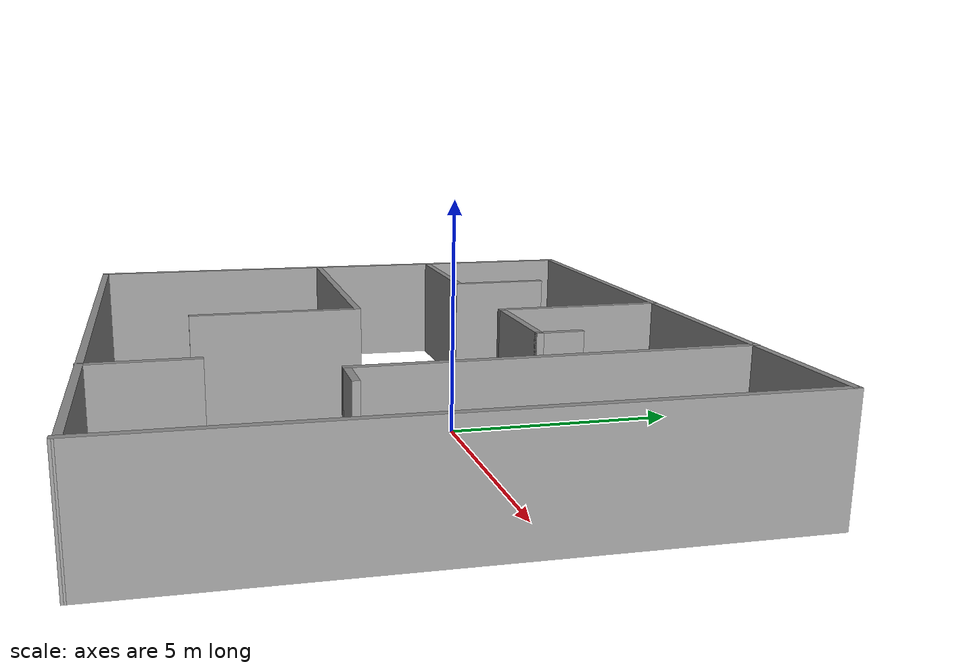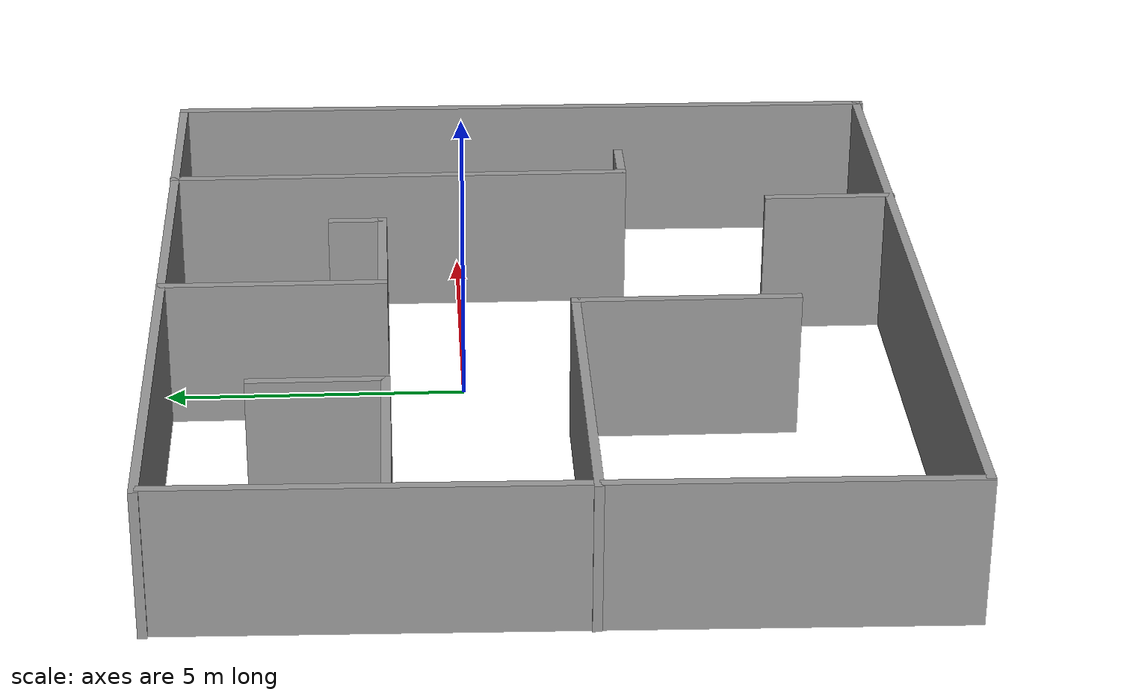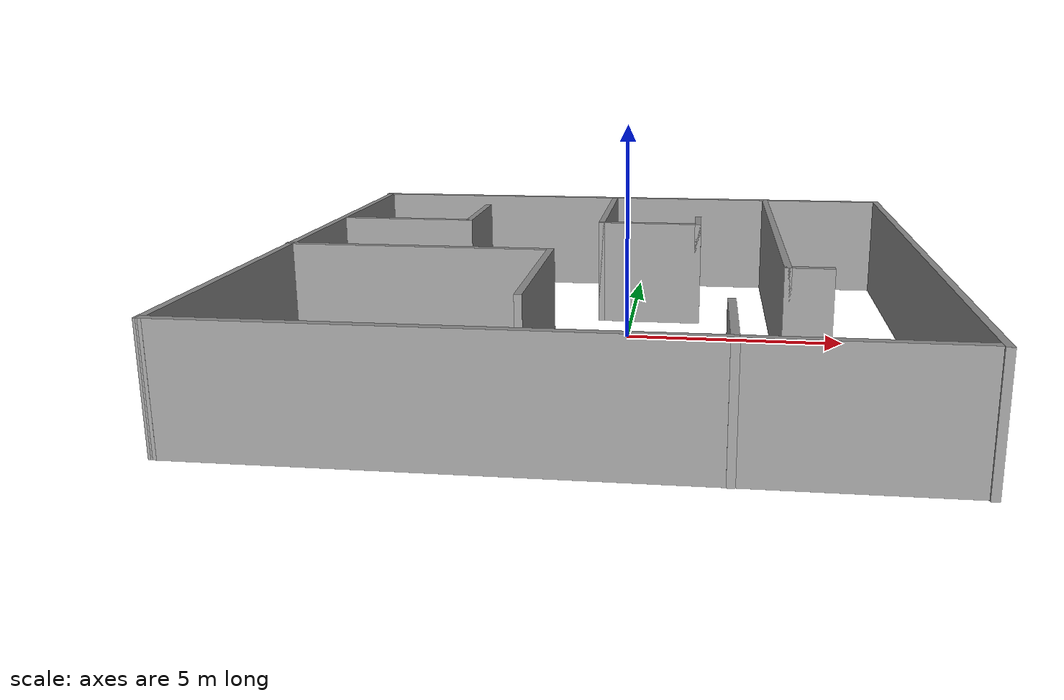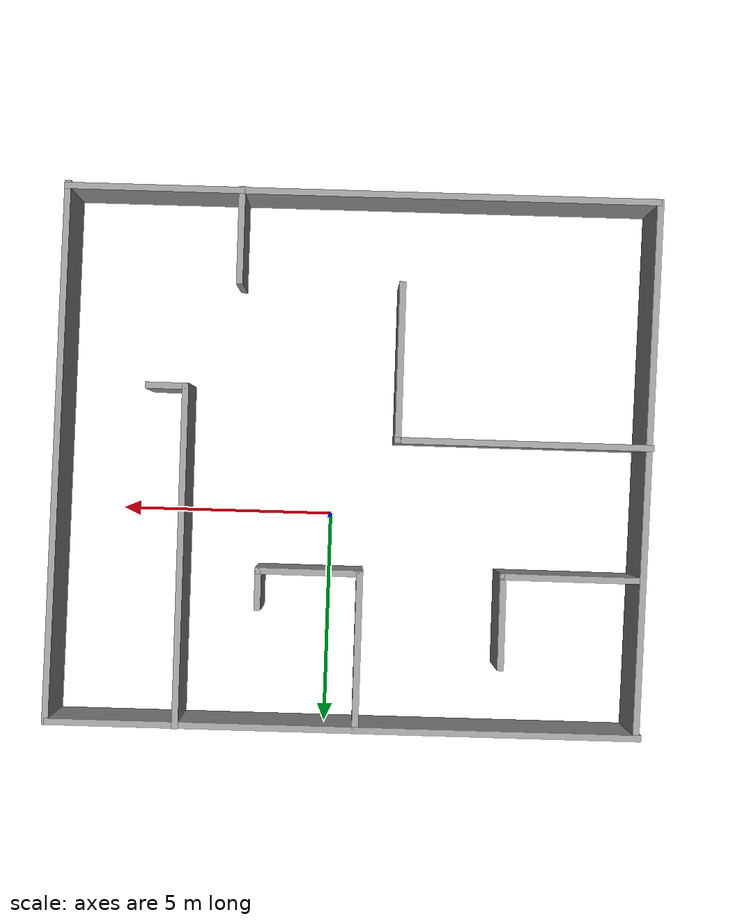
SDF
<?xml version='1.0'?>
<sdf version='1.7'>
  <model name='A1_WORLD'>
    <pose>-0.494931 -1.2592 0 0 -0 0</pose>
    <link name='Wall_11'>
      <collision name='Wall_11_Collision'>
        <geometry>
          <box>
            <size>13.8197 0.15 2.5</size>
          </box>
        </geometry>
        <pose>0 0 1.25 0 -0 0</pose>
      </collision>
      <visual name='Wall_11_Visual'>
        <pose>0 0 1.25 0 -0 0</pose>
        <geometry>
          <box>
            <size>13.8197 0.15 2.5</size>
          </box>
        </geometry>
        <material>
          <script>
            <uri>file://media/materials/scripts/gazebo.material</uri>
            <name>Gazebo/Grey</name>
          </script>
          <ambient>1 1 1 1</ambient>
        </material>
        <meta>
          <layer>0</layer>
        </meta>
      </visual>
      <pose>-0.046384 -6.19867 0 0 -0 0.00296</pose>
    </link>
    <link name='Wall_13'>
      <collision name='Wall_13_Collision'>
        <geometry>
          <box>
            <size>3.25 0.15 2.5</size>
          </box>
        </geometry>
        <pose>0 0 1.25 0 -0 0</pose>
      </collision>
      <visual name='Wall_13_Visual'>
        <pose>0 0 1.25 0 -0 0</pose>
        <geometry>
          <box>
            <size>3.25 0.15 2.5</size>
          </box>
        </geometry>
        <material>
          <script>
            <uri>file://media/materials/scripts/gazebo.material</uri>
            <name>Gazebo/Grey</name>
          </script>
          <ambient>1 1 1 1</ambient>
        </material>
        <meta>
          <layer>0</layer>
        </meta>
      </visual>
      <pose>-5.11064 2.54435 0 0 -0 3.14159</pose>
    </link>
    <link name='Wall_15'>
      <collision name='Wall_15_Collision'>
        <geometry>
          <box>
            <size>2.25 0.15 2.5</size>
          </box>
        </geometry>
        <pose>0 0 1.25 0 -0 0</pose>
      </collision>
      <visual name='Wall_15_Visual'>
        <pose>0 0 1.25 0 -0 0</pose>
        <geometry>
          <box>
            <size>2.25 0.15 2.5</size>
          </box>
        </geometry>
        <material>
          <script>
            <uri>file://media/materials/scripts/gazebo.material</uri>
            <name>Gazebo/Grey</name>
          </script>
          <ambient>1 1 1 1</ambient>
        </material>
        <meta>
          <layer>0</layer>
        </meta>
      </visual>
      <pose>-3.56064 3.59435 0 0 -0 1.5708</pose>
    </link>
    <link name='Wall_17'>
      <collision name='Wall_17_Collision'>
        <geometry>
          <box>
            <size>6 0.15 2.5</size>
          </box>
        </geometry>
        <pose>0 0 1.25 0 -0 0</pose>
      </collision>
      <visual name='Wall_17_Visual'>
        <pose>0 0 1.25 0 -0 0</pose>
        <geometry>
          <box>
            <size>6 0.15 2.5</size>
          </box>
        </geometry>
        <material>
          <script>
            <uri>file://media/materials/scripts/gazebo.material</uri>
            <name>Gazebo/Grey</name>
          </script>
          <ambient>1 1 1 1</ambient>
        </material>
        <meta>
          <layer>0</layer>
        </meta>
      </visual>
      <pose>-3.953 -0.530276 0 0 -0 0</pose>
    </link>
    <link name='Wall_18'>
      <collision name='Wall_18_Collision'>
        <geometry>
          <box>
            <size>3.75 0.15 2.5</size>
          </box>
        </geometry>
        <pose>0 0 1.25 0 -0 0</pose>
      </collision>
      <visual name='Wall_18_Visual'>
        <pose>0 0 1.25 0 -0 0</pose>
        <geometry>
          <box>
            <size>3.75 0.15 2.5</size>
          </box>
        </geometry>
        <material>
          <script>
            <uri>file://media/materials/scripts/gazebo.material</uri>
            <name>Gazebo/Grey</name>
          </script>
          <ambient>1 1 1 1</ambient>
        </material>
        <meta>
          <layer>0</layer>
        </meta>
      </visual>
      <pose>-1.028 -2.33028 0 0 -0 -1.5708</pose>
    </link>
    <link name='Wall_20'>
      <collision name='Wall_20_Collision'>
        <geometry>
          <box>
            <size>8 0.15 2.5</size>
          </box>
        </geometry>
        <pose>0 0 1.25 0 -0 0</pose>
      </collision>
      <visual name='Wall_20_Visual'>
        <pose>0 0 1.25 0 -0 0</pose>
        <geometry>
          <box>
            <size>8 0.15 2.5</size>
          </box>
        </geometry>
        <material>
          <script>
            <uri>file://media/materials/scripts/gazebo.material</uri>
            <name>Gazebo/Grey</name>
          </script>
          <ambient>1 1 1 1</ambient>
        </material>
        <meta>
          <layer>0</layer>
        </meta>
      </visual>
      <pose>3.92364 2.3008 0 0 -0 -1.5708</pose>
    </link>
    <link name='Wall_21'>
      <collision name='Wall_21_Collision'>
        <geometry>
          <box>
            <size>1 0.15 2.5</size>
          </box>
        </geometry>
        <pose>0 0 1.25 0 -0 0</pose>
      </collision>
      <visual name='Wall_21_Visual'>
        <pose>0 0 1.25 0 -0 0</pose>
        <geometry>
          <box>
            <size>1 0.15 2.5</size>
          </box>
        </geometry>
        <material>
          <script>
            <uri>file://media/materials/scripts/gazebo.material</uri>
            <name>Gazebo/Grey</name>
          </script>
          <ambient>1 1 1 1</ambient>
        </material>
        <meta>
          <layer>0</layer>
        </meta>
      </visual>
      <pose>4.34864 -1.6242 0 0 -0 0</pose>
    </link>
    <link name='Wall_23'>
      <collision name='Wall_23_Collision'>
        <geometry>
          <box>
            <size>3.75 0.15 2.5</size>
          </box>
        </geometry>
        <pose>0 0 1.25 0 -0 0</pose>
      </collision>
      <visual name='Wall_23_Visual'>
        <pose>0 0 1.25 0 -0 0</pose>
        <geometry>
          <box>
            <size>3.75 0.15 2.5</size>
          </box>
        </geometry>
        <material>
          <script>
            <uri>file://media/materials/scripts/gazebo.material</uri>
            <name>Gazebo/Grey</name>
          </script>
          <ambient>1 1 1 1</ambient>
        </material>
        <meta>
          <layer>0</layer>
        </meta>
      </visual>
      <pose>-0.243286 4.38535 0 0 -0 -1.5708</pose>
    </link>
    <link name='Wall_24'>
      <collision name='Wall_24_Collision'>
        <geometry>
          <box>
            <size>2.5 0.15 2.5</size>
          </box>
        </geometry>
        <pose>0 0 1.25 0 -0 0</pose>
      </collision>
      <visual name='Wall_24_Visual'>
        <pose>0 0 1.25 0 -0 0</pose>
        <geometry>
          <box>
            <size>2.5 0.15 2.5</size>
          </box>
        </geometry>
        <material>
          <script>
            <uri>file://media/materials/scripts/gazebo.material</uri>
            <name>Gazebo/Grey</name>
          </script>
          <ambient>1 1 1 1</ambient>
        </material>
        <meta>
          <layer>0</layer>
        </meta>
      </visual>
      <pose>0.931714 2.58535 0 0 -0 0</pose>
    </link>
    <link name='Wall_25'>
      <collision name='Wall_25_Collision'>
        <geometry>
          <box>
            <size>1 0.15 2.5</size>
          </box>
        </geometry>
        <pose>0 0 1.25 0 -0 0</pose>
      </collision>
      <visual name='Wall_25_Visual'>
        <pose>0 0 1.25 0 -0 0</pose>
        <geometry>
          <box>
            <size>1 0.15 2.5</size>
          </box>
        </geometry>
        <material>
          <script>
            <uri>file://media/materials/scripts/gazebo.material</uri>
            <name>Gazebo/Grey</name>
          </script>
          <ambient>1 1 1 1</ambient>
        </material>
        <meta>
          <layer>0</layer>
        </meta>
      </visual>
      <pose>2.10671 3.01035 0 0 -0 1.5708</pose>
    </link>
    <link name='Wall_27'>
      <collision name='Wall_27_Collision'>
        <geometry>
          <box>
            <size>2.25 0.15 2.5</size>
          </box>
        </geometry>
        <pose>0 0 1.25 0 -0 0</pose>
      </collision>
      <visual name='Wall_27_Visual'>
        <pose>0 0 1.25 0 -0 0</pose>
        <geometry>
          <box>
            <size>2.25 0.15 2.5</size>
          </box>
        </geometry>
        <material>
          <script>
            <uri>file://media/materials/scripts/gazebo.material</uri>
            <name>Gazebo/Grey</name>
          </script>
          <ambient>1 1 1 1</ambient>
        </material>
        <meta>
          <layer>0</layer>
        </meta>
      </visual>
      <pose>2.75274 -5.15493 0 0 -0 1.5708</pose>
    </link>
    <link name='Wall_4'>
      <collision name='Wall_4_Collision'>
        <geometry>
          <box>
            <size>13.8197 0.15 2.5</size>
          </box>
        </geometry>
        <pose>0 0 1.25 0 -0 0</pose>
      </collision>
      <visual name='Wall_4_Visual'>
        <pose>0 0 1.25 0 -0 0</pose>
        <geometry>
          <box>
            <size>13.8197 0.15 2.5</size>
          </box>
        </geometry>
        <material>
          <script>
            <uri>file://media/materials/scripts/gazebo.material</uri>
            <name>Gazebo/Grey</name>
          </script>
          <ambient>1 1 1 1</ambient>
        </material>
        <meta>
          <layer>0</layer>
        </meta>
      </visual>
      <pose>0.046664 6.204 0 0 -0 -3.13863</pose>
    </link>
    <link name='Wall_6'>
      <collision name='Wall_6_Collision'>
        <geometry>
          <box>
            <size>12.5541 0.15 2.5</size>
          </box>
        </geometry>
        <pose>0 0 1.25 0 -0 0</pose>
      </collision>
      <visual name='Wall_6_Visual'>
        <pose>0 0 1.25 0 -0 0</pose>
        <geometry>
          <box>
            <size>12.5541 0.15 2.5</size>
          </box>
        </geometry>
        <material>
          <script>
            <uri>file://media/materials/scripts/gazebo.material</uri>
            <name>Gazebo/Grey</name>
          </script>
          <ambient>1 1 1 1</ambient>
        </material>
        <meta>
          <layer>0</layer>
        </meta>
      </visual>
      <pose>-6.8347 -0.017567 0 0 -0 1.55579</pose>
    </link>
    <link name='Wall_8'>
      <collision name='Wall_8_Collision'>
        <geometry>
          <box>
            <size>12.6 0.15 2.5</size>
          </box>
        </geometry>
        <pose>0 0 1.25 0 -0 0</pose>
      </collision>
      <visual name='Wall_8_Visual'>
        <pose>0 0 1.25 0 -0 0</pose>
        <geometry>
          <box>
            <size>12.6 0.15 2.5</size>
          </box>
        </geometry>
        <material>
          <script>
            <uri>file://media/materials/scripts/gazebo.material</uri>
            <name>Gazebo/Grey</name>
          </script>
          <ambient>1 1 1 1</ambient>
        </material>
        <meta>
          <layer>0</layer>
        </meta>
      </visual>
      <pose>6.85824 -0.000373 0 0 -0 -1.58201</pose>
    </link>
    <static>1</static>
  </model>
</sdf>
